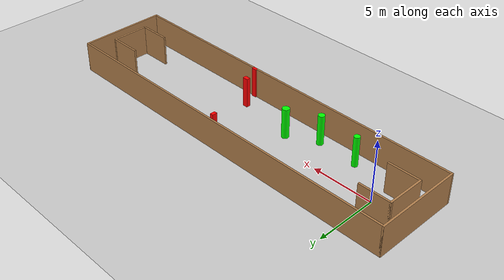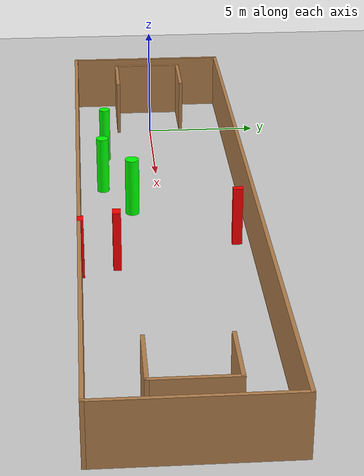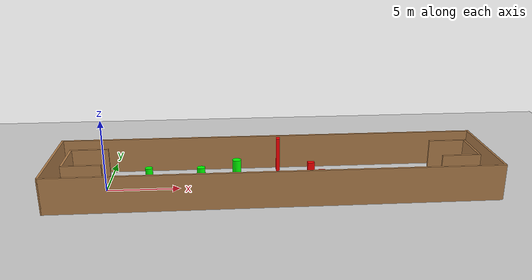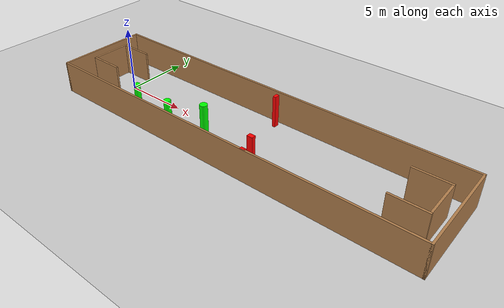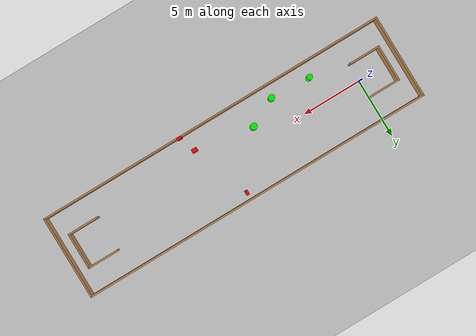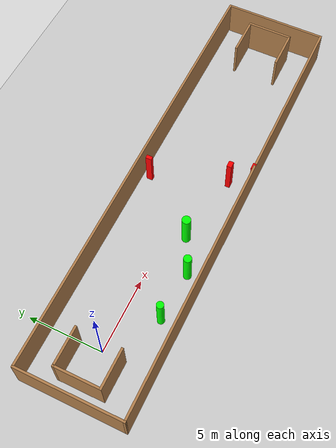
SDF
<sdf version="1.7">
 <world name="default">
  <light name="sun" type="directional">
   <pose>0 0 10 0 -0 0</pose>
   <diffuse>0.8 0.8 0.8 1</diffuse>
   <specular>0.2 0.2 0.2 1</specular>
   <attenuation>
    <range>1000</range>
    <constant>0.9</constant>
    <linear>0.01</linear>
    <quadratic>0.001</quadratic>
   </attenuation>
   <direction>-0.5 0.1 -0.9</direction>
   <spot><inner_angle>0</inner_angle><outer_angle>0</outer_angle><falloff>0</falloff></spot>
  </light>
  <model name="ground_plane">
   <static>1</static>
   <link name="link">
    <collision name="collision">
     <geometry><plane><normal>0 0 1</normal><size>100 100</size></plane></geometry>
     <surface>
      <contact><collide_bitmask>65535</collide_bitmask></contact>
      <friction><ode><mu>100</mu><mu2>50</mu2></ode></friction>
     </surface>
    </collision>
    <visual name="visual">
     <cast_shadows>0</cast_shadows>
     <geometry><plane><normal>0 0 1</normal><size>100 100</size></plane></geometry>
     <material>
      <script><uri>file://media/materials/scripts/gazebo.material</uri><name>Gazebo/Grey</name></script>
     </material>
    </visual>
   </link>
  </model>
  <gravity>0 0 -9.8</gravity>
  <magnetic_field>6e-06 2.3e-05 -4.2e-05</magnetic_field>
  <atmosphere type="adiabatic"/>
  <physics type="ode">
   <max_step_size>0.001</max_step_size>
   <real_time_factor>1</real_time_factor>
   <real_time_update_rate>1000</real_time_update_rate>
  </physics>
  <scene><ambient>0.4 0.4 0.4 1</ambient><background>0.7 0.7 0.7 1</background><shadows>1</shadows></scene>
  <spherical_coordinates>
   <surface_model>EARTH_WGS84</surface_model>
   <latitude_deg>0</latitude_deg>
   <longitude_deg>0</longitude_deg>
   <elevation>0</elevation>
   <heading_deg>0</heading_deg>
  </spherical_coordinates>
  <model name="my_base_walls">
   <link name="Wall_0">
    <collision name="Wall_0_Collision">
     <geometry><box><size>7.15 0.15 2.5</size></box></geometry>
     <pose>0 0 1.25 0 -0 0</pose>
    </collision>
    <visual name="Wall_0_Visual">
     <pose>0 0 1.25 0 -0 0</pose>
     <geometry><box><size>7.15 0.15 2.5</size></box></geometry>
     <material>
      <script><uri>file://media/materials/scripts/gazebo.material</uri><name>Gazebo/Wood</name></script>
      <ambient>1 1 1 1</ambient>
     </material>
     <meta><layer>0</layer></meta>
    </visual>
    <pose>-15 0 0 0 -0 1.5708</pose>
   </link>
   <link name="Wall_10">
    <collision name="Wall_10_Collision">
     <geometry><box><size>2.65 0.15 2.5</size></box></geometry>
     <pose>0 0 1.25 0 -0 0</pose>
    </collision>
    <visual name="Wall_10_Visual">
     <pose>0 0 1.25 0 -0 0</pose>
     <geometry><box><size>2.65 0.15 2.5</size></box></geometry>
     <material>
      <script><uri>file://media/materials/scripts/gazebo.material</uri><name>Gazebo/Wood</name></script>
      <ambient>1 1 1 1</ambient>
     </material>
     <meta><layer>0</layer></meta>
    </visual>
    <pose>-12.75 -1.5 0 0 -0 0</pose>
   </link>
   <link name="Wall_12">
    <collision name="Wall_12_Collision">
     <geometry><box><size>2.65 0.15 2.5</size></box></geometry>
     <pose>0 0 1.25 0 -0 0</pose>
    </collision>
    <visual name="Wall_12_Visual">
     <pose>0 0 1.25 0 -0 0</pose>
     <geometry><box><size>2.65 0.15 2.5</size></box></geometry>
     <material>
      <script><uri>file://media/materials/scripts/gazebo.material</uri><name>Gazebo/Wood</name></script>
      <ambient>1 1 1 1</ambient>
     </material>
     <meta><layer>0</layer></meta>
    </visual>
    <pose>-12.75 1.5 0 0 -0 0</pose>
   </link>
   <link name="Wall_14">
    <collision name="Wall_14_Collision">
     <geometry><box><size>3.15 0.15 2.5</size></box></geometry>
     <pose>0 0 1.25 0 -0 0</pose>
    </collision>
    <visual name="Wall_14_Visual">
     <pose>0 0 1.25 0 -0 0</pose>
     <geometry><box><size>3.15 0.15 2.5</size></box></geometry>
     <material>
      <script><uri>file://media/materials/scripts/gazebo.material</uri><name>Gazebo/Wood</name></script>
      <ambient>1 1 1 1</ambient>
     </material>
     <meta><layer>0</layer></meta>
    </visual>
    <pose>14 0 0 0 -0 -1.5708</pose>
   </link>
   <link name="Wall_15">
    <collision name="Wall_15_Collision">
     <geometry><box><size>2.65 0.15 2.5</size></box></geometry>
     <pose>0 0 1.25 0 -0 0</pose>
    </collision>
    <visual name="Wall_15_Visual">
     <pose>0 0 1.25 0 -0 0</pose>
     <geometry><box><size>2.65 0.15 2.5</size></box></geometry>
     <material>
      <script><uri>file://media/materials/scripts/gazebo.material</uri><name>Gazebo/Wood</name></script>
      <ambient>1 1 1 1</ambient>
     </material>
     <meta><layer>0</layer></meta>
    </visual>
    <pose>12.75 -1.5 0 0 -0 3.14159</pose>
   </link>
   <link name="Wall_17">
    <collision name="Wall_17_Collision">
     <geometry><box><size>2.65 0.15 2.5</size></box></geometry>
     <pose>0 0 1.25 0 -0 0</pose>
    </collision>
    <visual name="Wall_17_Visual">
     <pose>0 0 1.25 0 -0 0</pose>
     <geometry><box><size>2.65 0.15 2.5</size></box></geometry>
     <material>
      <script><uri>file://media/materials/scripts/gazebo.material</uri><name>Gazebo/Wood</name></script>
      <ambient>1 1 1 1</ambient>
     </material>
     <meta><layer>0</layer></meta>
    </visual>
    <pose>12.75 1.5 0 0 -0 3.14159</pose>
   </link>
   <link name="Wall_2">
    <collision name="Wall_2_Collision">
     <geometry><box><size>30.15 0.15 2.5</size></box></geometry>
     <pose>0 0 1.25 0 -0 0</pose>
    </collision>
    <visual name="Wall_2_Visual">
     <pose>0 0 1.25 0 -0 0</pose>
     <geometry><box><size>30.15 0.15 2.5</size></box></geometry>
     <material>
      <script><uri>file://media/materials/scripts/gazebo.material</uri><name>Gazebo/Wood</name></script>
      <ambient>1 1 1 1</ambient>
     </material>
     <meta><layer>0</layer></meta>
    </visual>
    <pose>-0 -3.5 0 0 -0 0</pose>
   </link>
   <link name="Wall_4">
    <collision name="Wall_4_Collision">
     <geometry><box><size>30.15 0.15 2.5</size></box></geometry>
     <pose>0 0 1.25 0 -0 0</pose>
    </collision>
    <visual name="Wall_4_Visual">
     <pose>0 0 1.25 0 -0 0</pose>
     <geometry><box><size>30.15 0.15 2.5</size></box></geometry>
     <material>
      <script><uri>file://media/materials/scripts/gazebo.material</uri><name>Gazebo/Wood</name></script>
      <ambient>1 1 1 1</ambient>
     </material>
     <meta><layer>0</layer></meta>
    </visual>
    <pose>-0 3.5 0 0 -0 0</pose>
   </link>
   <link name="Wall_6">
    <collision name="Wall_6_Collision">
     <geometry><box><size>7.15 0.15 2.5</size></box></geometry>
     <pose>0 0 1.25 0 -0 0</pose>
    </collision>
    <visual name="Wall_6_Visual">
     <pose>0 0 1.25 0 -0 0</pose>
     <geometry><box><size>7.15 0.15 2.5</size></box></geometry>
     <material>
      <script><uri>file://media/materials/scripts/gazebo.material</uri><name>Gazebo/Wood</name></script>
      <ambient>1 1 1 1</ambient>
     </material>
     <meta><layer>0</layer></meta>
    </visual>
    <pose>15 0 0 0 -0 -1.5708</pose>
   </link>
   <link name="Wall_9">
    <collision name="Wall_9_Collision">
     <geometry><box><size>3.15 0.15 2.5</size></box></geometry>
     <pose>0 0 1.25 0 -0 0</pose>
    </collision>
    <visual name="Wall_9_Visual">
     <pose>0 0 1.25 0 -0 0</pose>
     <geometry><box><size>3.15 0.15 2.5</size></box></geometry>
     <material>
      <script><uri>file://media/materials/scripts/gazebo.material</uri><name>Gazebo/Wood</name></script>
      <ambient>1 1 1 1</ambient>
     </material>
     <meta><layer>0</layer></meta>
    </visual>
    <pose>-14 0 0 0 -0 -1.5708</pose>
   </link>
   <static>1</static>
   <pose>11.5 0 0 0 -0 0</pose>
  </model>
  <model name="cylinder1">
   <static>1</static>
   <link name="link">
    <inertial>
     <mass>1</mass>
     <inertia><ixx>0.5</ixx><ixy>0</ixy><ixz>0</ixz><iyy>0.5</iyy><iyz>0</iyz><izz>1</izz></inertia>
    </inertial>
    <collision name="collision">
     <geometry><cylinder><radius>0.2623617174220499</radius><length>2.5</length></cylinder></geometry>
    </collision>
    <visual name="visual">
     <geometry><cylinder><radius>0.2623617174220499</radius><length>2.5</length></cylinder></geometry>
     <material>
      <ambient>0 1 0 1</ambient>
      <diffuse>0 1 0 1</diffuse>
      <specular>0.1 0.1 0.1 1</specular>
      <emissive>0 0 0 0</emissive>
     </material>
    </visual>
   </link>
   <pose>6.616777747822686 -2.423031231490113 1.25 0 0 0</pose>
  </model>
  <model name="cylinder2">
   <static>1</static>
   <link name="link">
    <inertial>
     <mass>1</mass>
     <inertia><ixx>0.5</ixx><ixy>0</ixy><ixz>0</ixz><iyy>0.5</iyy><iyz>0</iyz><izz>1</izz></inertia>
    </inertial>
    <collision name="collision">
     <geometry><cylinder><radius>0.29201548548434464</radius><length>2.5</length></cylinder></geometry>
    </collision>
    <visual name="visual">
     <geometry><cylinder><radius>0.29201548548434464</radius><length>2.5</length></cylinder></geometry>
     <material>
      <ambient>0 1 0 1</ambient>
      <diffuse>0 1 0 1</diffuse>
      <specular>0.1 0.1 0.1 1</specular>
      <emissive>0 0 0 0</emissive>
     </material>
    </visual>
   </link>
   <pose>8.950726130340964 -1.2336801924900174 1.25 0 0 0</pose>
  </model>
  <model name="cylinder3">
   <static>1</static>
   <link name="link">
    <inertial>
     <mass>1</mass>
     <inertia><ixx>0.5</ixx><ixy>0</ixy><ixz>0</ixz><iyy>0.5</iyy><iyz>0</iyz><izz>1</izz></inertia>
    </inertial>
    <collision name="collision">
     <geometry><cylinder><radius>0.23717927936460417</radius><length>2.5</length></cylinder></geometry>
    </collision>
    <visual name="visual">
     <geometry><cylinder><radius>0.23717927936460417</radius><length>2.5</length></cylinder></geometry>
     <material>
      <ambient>0 1 0 1</ambient>
      <diffuse>0 1 0 1</diffuse>
      <specular>0.1 0.1 0.1 1</specular>
      <emissive>0 0 0 0</emissive>
     </material>
    </visual>
   </link>
   <pose>3.259779915781726 -2.2538993458668704 1.25 0 0 0</pose>
  </model>
  <model name="box1">
   <static>1</static>
   <link name="link">
    <inertial>
     <mass>1</mass>
     <inertia><ixx>0.083</ixx><ixy>0</ixy><ixz>0</ixz><iyy>0.083</iyy><iyz>0</iyz><izz>0.083</izz></inertia>
    </inertial>
    <collision name="collision">
     <geometry><box><size>0.41345510736566404 0.2369091801144353 2.5</size></box></geometry>
    </collision>
    <visual name="visual">
     <geometry><box><size>0.41345510736566404 0.2369091801144353 2.5</size></box></geometry>
     <material>
      <ambient>1 0 0 1</ambient>
      <diffuse>1 0 0 1</diffuse>
      <specular>0.1 0.1 0.1 1</specular>
      <emissive>0 0 0 0</emissive>
     </material>
    </visual>
    <sensor name="my_contact" type="contact">
     <contact><collision>box_collision</collision><topic>__default_topic__</topic></contact>
    </sensor>
   </link>
   <pose>14.350066578661874 -3.451893993450094 1.25 0 0 0</pose>
  </model>
  <model name="box2">
   <static>1</static>
   <link name="link">
    <inertial>
     <mass>1</mass>
     <inertia><ixx>0.083</ixx><ixy>0</ixy><ixz>0</ixz><iyy>0.083</iyy><iyz>0</iyz><izz>0.083</izz></inertia>
    </inertial>
    <collision name="collision">
     <geometry><box><size>0.2552549325035224 0.4033695990656553 2.5</size></box></geometry>
    </collision>
    <visual name="visual">
     <geometry><box><size>0.2552549325035224 0.4033695990656553 2.5</size></box></geometry>
     <material>
      <ambient>1 0 0 1</ambient>
      <diffuse>1 0 0 1</diffuse>
      <specular>0.1 0.1 0.1 1</specular>
      <emissive>0 0 0 0</emissive>
     </material>
    </visual>
    <sensor name="my_contact" type="contact">
     <contact><collision>box_collision</collision><topic>__default_topic__</topic></contact>
    </sensor>
   </link>
   <pose>12.05648491217311 2.8943936540792103 1.25 0 0 0</pose>
  </model>
  <model name="box3">
   <static>1</static>
   <link name="link">
    <inertial>
     <mass>1</mass>
     <inertia><ixx>0.083</ixx><ixy>0</ixy><ixz>0</ixz><iyy>0.083</iyy><iyz>0</iyz><izz>0.083</izz></inertia>
    </inertial>
    <collision name="collision">
     <geometry><box><size>0.4409243736454517 0.3225706381306052 2.5</size></box></geometry>
    </collision>
    <visual name="visual">
     <geometry><box><size>0.4409243736454517 0.3225706381306052 2.5</size></box></geometry>
     <material>
      <ambient>1 0 0 1</ambient>
      <diffuse>1 0 0 1</diffuse>
      <specular>0.1 0.1 0.1 1</specular>
      <emissive>0 0 0 0</emissive>
     </material>
    </visual>
    <sensor name="my_contact" type="contact">
     <contact><collision>box_collision</collision><topic>__default_topic__</topic></contact>
    </sensor>
   </link>
   <pose>13.829173952026023 -2.03981841091044 1.25 0 0 0</pose>
  </model>
 </world>
</sdf>
